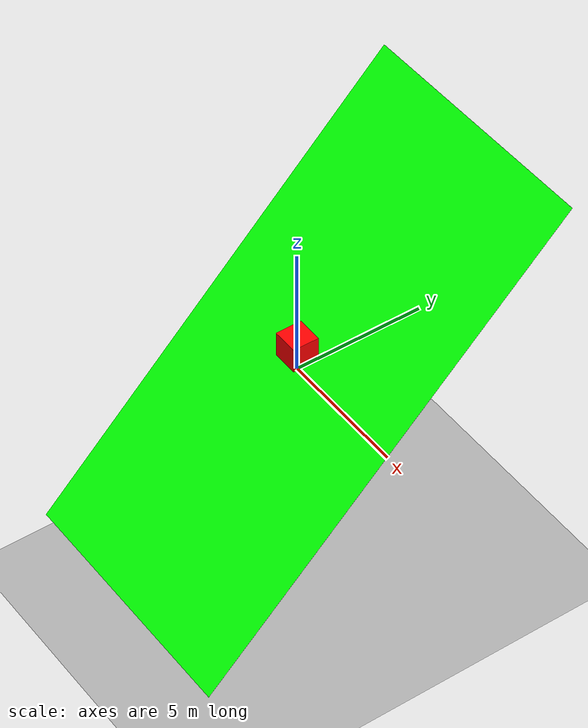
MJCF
<mujoco>
  <option gravity="0 0 -9.81" />
  <worldbody>
    <body name="object_1" pos="0 0 1">
      <geom type="box" size="0.5 0.5 0.5" density="5" rgba="1 0 0 1" />
      <joint name="object_1_joint" type="free" />
    </body>
    <body name="object_2" pos="0 0 0">
      <geom type="plane" size="5 10 0.1" rgba="0 1 0 1" friction="0.3 0.3 0.3" quat="0.9239 0.3827 0 0" />
    </body>
    <body name="object_3" pos="0 0 -10">
      <geom type="plane" size="30 30 0.1" rgba="0.7 0.7 0.7 1" friction="1 1 1" />
    </body>
  </worldbody>
</mujoco>
